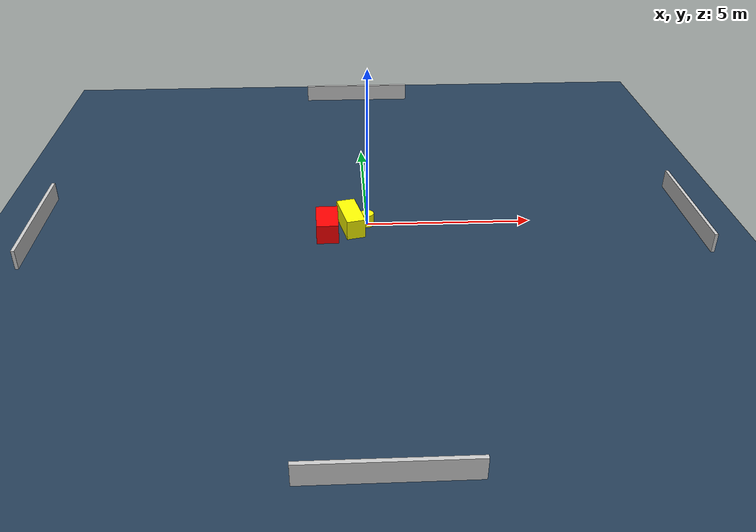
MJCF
<?xml version="1.0" ?>
<mujoco model="generated_environment">
  <option timestep="0.01" integrator="RK4" cone="elliptic"/>
  <default>
    <geom density="1"/>
  </default>
  <asset>
    <texture builtin="gradient" height="3072" name="skybox" rgb1="0.3 0.5 0.7" rgb2="0 0 0" type="skybox" width="512"/>
    <texture builtin="checker" height="300" name="groundplane" rgb1="0.2 0.3 0.4" rgb2="0.1 0.2 0.3" type="2d" width="300"/>
    <material name="groundplane" reflectance="0.2" texrepeat="5 5" texture="groundplane"/>
  </asset>
  <worldbody>
    <light dir="0 0 -1" directional="true" pos="0 0 1.5"/>
    <geom condim="3" friction="0.5 0.005 0.001" material="groundplane" name="floor" pos="0 0 0" size="0 0 0.05" type="plane"/>
    <body name="walls">
      <geom name="wall_1" condim="4" pos="-10.0 0.0 0.3" rgba="0.800000011920929 0.800000011920929 0.800000011920929 1.0" size="0.05 2.0 0.3" type="box"/>
      <geom name="wall_2" condim="4" pos="10.0 0.0 0.3" rgba="0.800000011920929 0.800000011920929 0.800000011920929 1.0" size="0.05 2.0 0.3" type="box"/>
      <geom name="wall_3" condim="4" pos="0.0 -10.0 0.3" rgba="0.800000011920929 0.800000011920929 0.800000011920929 1.0" size="2.0 0.05 0.3" type="box"/>
      <geom name="wall_4" condim="4" pos="0.0 10.0 0.3" rgba="0.800000011920929 0.800000011920929 0.800000011920929 1.0" size="2.0 0.05 0.3" type="box"/>
    </body>
    <body name="robot">
      <joint name="joint_x" type="slide" pos="0 0 0" axis="1 0 0"/>
      <joint name="joint_y" type="slide" pos="0 0 0" axis="0 1 0"/>
      <geom name="robot" type="cylinder" pos="0.0 0.0 0.2" size="0.2 0.2 0.0" mass="5.0" friction="1.0 0.005 0.0001" condim="4" rgba="1.0 1.0 0.0 1.0"/>
    </body>
    <body name="obstacle_1_movable">
      <geom name="obstacle_1_movable" condim="4" pos="-0.509235687653974 -0.14912697886349507 0.3" euler="0 0 192.98718612255053" friction="0.0 0.005 0.001" rgba="1.0 1.0 0.0 1.0" size="0.2832648727935043 0.6629471041433121 0.3" type="box" mass="0.1"/>
      <joint type="free"/>
    </body>
    <body name="obstacle_2_static">
      <geom name="obstacle_2_static" condim="4" pos="-1.2263518608301616 -0.4646999398560345 0.3" euler="0 0 271.02581217138265" friction="0.0 0.005 0.001" rgba="1.0 0.0 0.0 1.0" size="0.582815822443962 0.32909023009183286 0.3" type="box"/>
    </body>
  </worldbody>
  <actuator>
    <motor name="actuator_x" joint="joint_x" gear="1" ctrlrange="-1 1"/>
    <motor name="actuator_y" joint="joint_y" gear="1" ctrlrange="-1 1"/>
  </actuator>
</mujoco>
